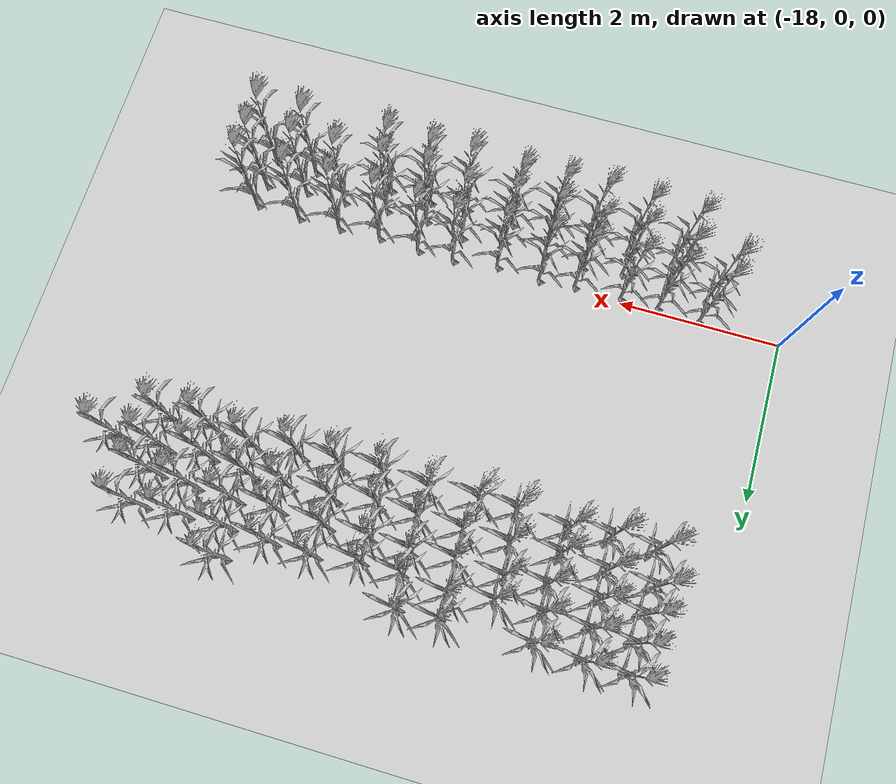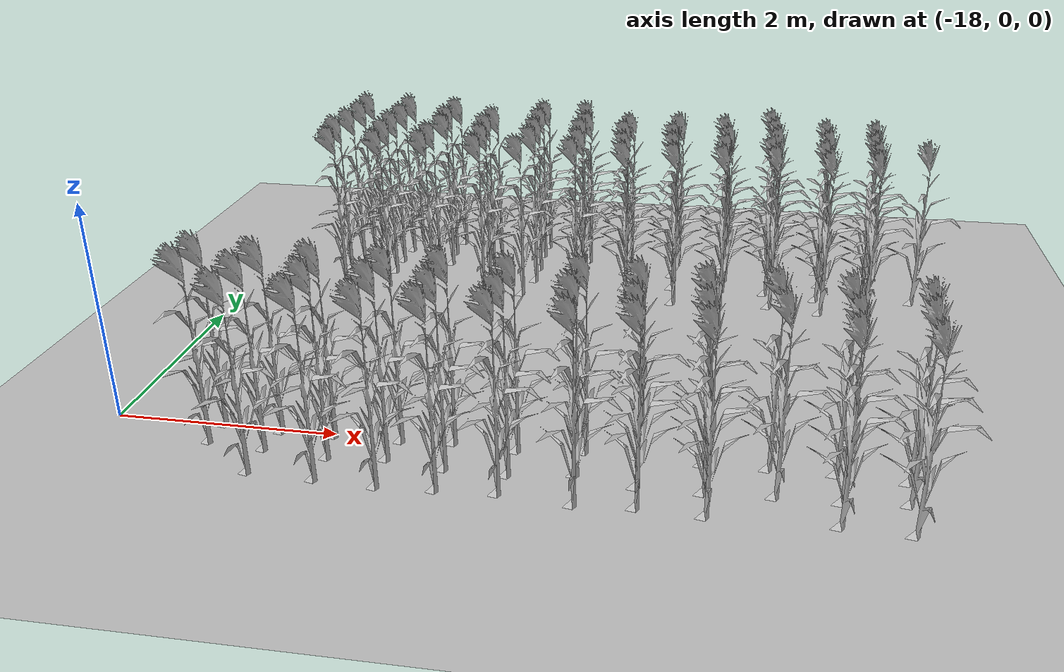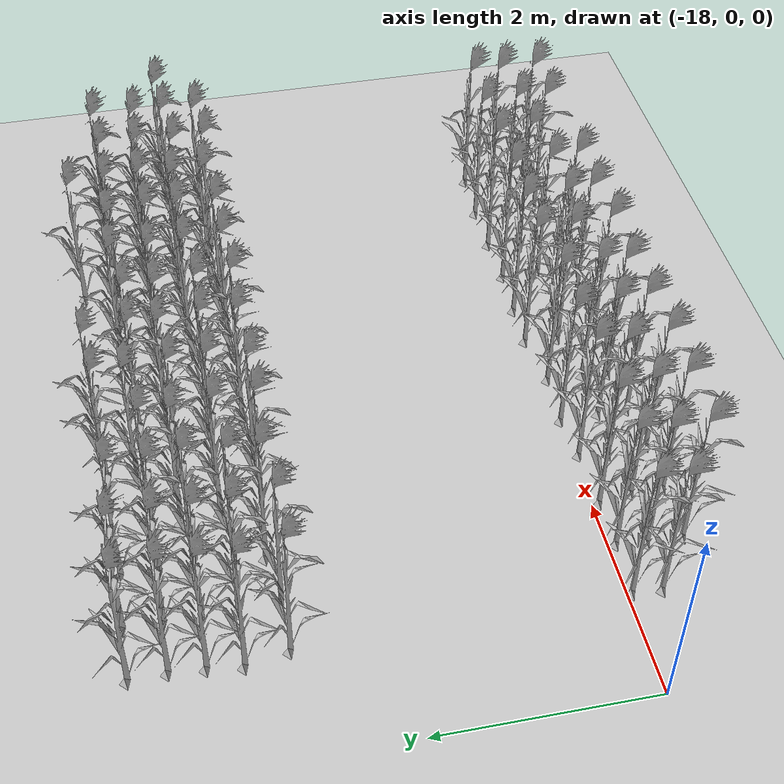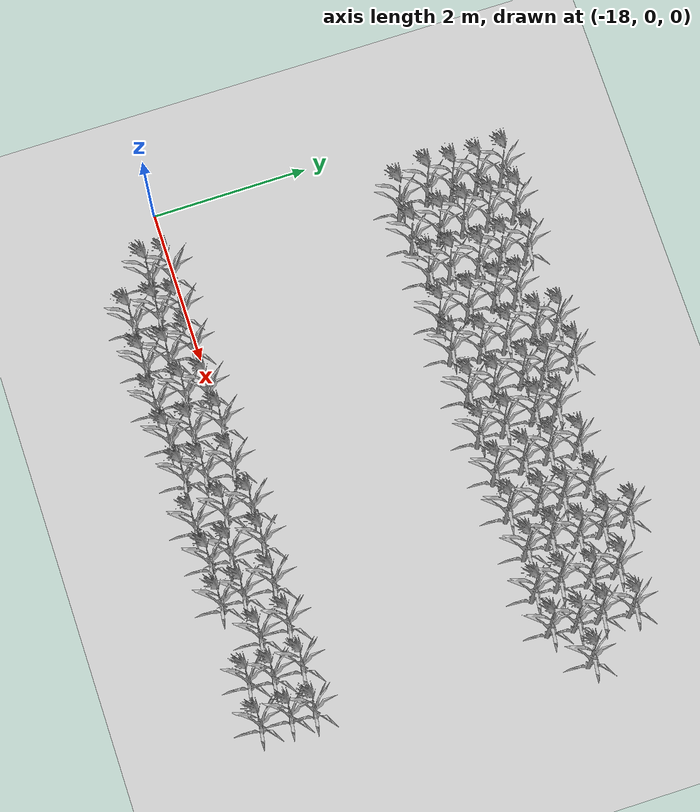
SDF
<sdf version="1.7">
 <world name="farmland_world">
  <model name="ground_plane">
   <static>1</static>
   <link name="link">
    <collision name="collision">
     <geometry><plane><normal>0 0 1</normal><size>40.0 40.0</size></plane></geometry>
     <surface><friction><ode><mu>100</mu><mu2>50</mu2></ode></friction></surface>
    </collision>
    <visual name="visual">
     <cast_shadows>0</cast_shadows>
     <geometry><plane><normal>0 0 1</normal><size>40.0 40.0</size></plane></geometry>
     <material>
      <script><uri>file://media/materials/scripts/gazebo.material</uri><name>Gazebo/Grey</name></script>
     </material>
    </visual>
   </link>
  </model>
  <model name="tree_3_2679">
   <static>1</static>
   <link name="link">
    <collision name="collision">
     <geometry><mesh><uri>model://Corn_low_poly/corn.obj</uri><scale>1 1 1</scale></mesh></geometry>
     <surface><friction><ode><mu>100</mu><mu2>50</mu2></ode></friction></surface>
    </collision>
    <visual name="visual">
     <geometry><mesh><uri>model://Corn_low_poly/corn.obj</uri><scale>1 1 1</scale></mesh></geometry>
    </visual>
   </link>
   <pose>-11.22473738852305 0.008085928798481102 0 0 0 0</pose>
  </model>
  <model name="tree_3_2680">
   <static>1</static>
   <link name="link">
    <collision name="collision">
     <geometry><mesh><uri>model://Corn_low_poly/corn.obj</uri><scale>1 1 1</scale></mesh></geometry>
     <surface><friction><ode><mu>100</mu><mu2>50</mu2></ode></friction></surface>
    </collision>
    <visual name="visual">
     <geometry><mesh><uri>model://Corn_low_poly/corn.obj</uri><scale>1 1 1</scale></mesh></geometry>
    </visual>
   </link>
   <pose>-11.790614640095132 0.034270175727297784 0 0 0 0</pose>
  </model>
  <model name="tree_3_2681">
   <static>1</static>
   <link name="link">
    <collision name="collision">
     <geometry><mesh><uri>model://Corn_low_poly/corn.obj</uri><scale>1 1 1</scale></mesh></geometry>
     <surface><friction><ode><mu>100</mu><mu2>50</mu2></ode></friction></surface>
    </collision>
    <visual name="visual">
     <geometry><mesh><uri>model://Corn_low_poly/corn.obj</uri><scale>1 1 1</scale></mesh></geometry>
    </visual>
   </link>
   <pose>-12.328868077486655 0.03215002560086377 0 0 0 0</pose>
  </model>
  <model name="tree_3_2682">
   <static>1</static>
   <link name="link">
    <collision name="collision">
     <geometry><mesh><uri>model://Corn_low_poly/corn.obj</uri><scale>1 1 1</scale></mesh></geometry>
     <surface><friction><ode><mu>100</mu><mu2>50</mu2></ode></friction></surface>
    </collision>
    <visual name="visual">
     <geometry><mesh><uri>model://Corn_low_poly/corn.obj</uri><scale>1 1 1</scale></mesh></geometry>
    </visual>
   </link>
   <pose>-12.85662036014044 0.01417417951512321 0 0 0 0</pose>
  </model>
  <model name="tree_3_2683">
   <static>1</static>
   <link name="link">
    <collision name="collision">
     <geometry><mesh><uri>model://Corn_low_poly/corn.obj</uri><scale>1 1 1</scale></mesh></geometry>
     <surface><friction><ode><mu>100</mu><mu2>50</mu2></ode></friction></surface>
    </collision>
    <visual name="visual">
     <geometry><mesh><uri>model://Corn_low_poly/corn.obj</uri><scale>1 1 1</scale></mesh></geometry>
    </visual>
   </link>
   <pose>-13.375347994106269 0.04001120567109955 0 0 0 0</pose>
  </model>
  <model name="tree_3_2684">
   <static>1</static>
   <link name="link">
    <collision name="collision">
     <geometry><mesh><uri>model://Corn_low_poly/corn.obj</uri><scale>1 1 1</scale></mesh></geometry>
     <surface><friction><ode><mu>100</mu><mu2>50</mu2></ode></friction></surface>
    </collision>
    <visual name="visual">
     <geometry><mesh><uri>model://Corn_low_poly/corn.obj</uri><scale>1 1 1</scale></mesh></geometry>
    </visual>
   </link>
   <pose>-13.832148294953392 0.04764776157289655 0 0 0 0</pose>
  </model>
  <model name="tree_3_2685">
   <static>1</static>
   <link name="link">
    <collision name="collision">
     <geometry><mesh><uri>model://Corn_low_poly/corn.obj</uri><scale>1 1 1</scale></mesh></geometry>
     <surface><friction><ode><mu>100</mu><mu2>50</mu2></ode></friction></surface>
    </collision>
    <visual name="visual">
     <geometry><mesh><uri>model://Corn_low_poly/corn.obj</uri><scale>1 1 1</scale></mesh></geometry>
    </visual>
   </link>
   <pose>-14.392944119927142 -0.02256867929219534 0 0 0 0</pose>
  </model>
  <model name="tree_3_2686">
   <static>1</static>
   <link name="link">
    <collision name="collision">
     <geometry><mesh><uri>model://Corn_low_poly/corn.obj</uri><scale>1 1 1</scale></mesh></geometry>
     <surface><friction><ode><mu>100</mu><mu2>50</mu2></ode></friction></surface>
    </collision>
    <visual name="visual">
     <geometry><mesh><uri>model://Corn_low_poly/corn.obj</uri><scale>1 1 1</scale></mesh></geometry>
    </visual>
   </link>
   <pose>-14.939331549344429 0.01062265309950079 0 0 0 0</pose>
  </model>
  <model name="tree_3_2687">
   <static>1</static>
   <link name="link">
    <collision name="collision">
     <geometry><mesh><uri>model://Corn_low_poly/corn.obj</uri><scale>1 1 1</scale></mesh></geometry>
     <surface><friction><ode><mu>100</mu><mu2>50</mu2></ode></friction></surface>
    </collision>
    <visual name="visual">
     <geometry><mesh><uri>model://Corn_low_poly/corn.obj</uri><scale>1 1 1</scale></mesh></geometry>
    </visual>
   </link>
   <pose>-15.388814630328898 -0.028948765263810294 0 0 0 0</pose>
  </model>
  <model name="tree_3_2688">
   <static>1</static>
   <link name="link">
    <collision name="collision">
     <geometry><mesh><uri>model://Corn_low_poly/corn.obj</uri><scale>1 1 1</scale></mesh></geometry>
     <surface><friction><ode><mu>100</mu><mu2>50</mu2></ode></friction></surface>
    </collision>
    <visual name="visual">
     <geometry><mesh><uri>model://Corn_low_poly/corn.obj</uri><scale>1 1 1</scale></mesh></geometry>
    </visual>
   </link>
   <pose>-15.974549811489679 -0.039902551110924445 0 0 0 0</pose>
  </model>
  <model name="tree_3_2689">
   <static>1</static>
   <link name="link">
    <collision name="collision">
     <geometry><mesh><uri>model://Corn_low_poly/corn.obj</uri><scale>1 1 1</scale></mesh></geometry>
     <surface><friction><ode><mu>100</mu><mu2>50</mu2></ode></friction></surface>
    </collision>
    <visual name="visual">
     <geometry><mesh><uri>model://Corn_low_poly/corn.obj</uri><scale>1 1 1</scale></mesh></geometry>
    </visual>
   </link>
   <pose>-16.444942536429863 -0.043494782947700664 0 0 0 0</pose>
  </model>
  <model name="tree_3_2690">
   <static>1</static>
   <link name="link">
    <collision name="collision">
     <geometry><mesh><uri>model://Corn_low_poly/corn.obj</uri><scale>1 1 1</scale></mesh></geometry>
     <surface><friction><ode><mu>100</mu><mu2>50</mu2></ode></friction></surface>
    </collision>
    <visual name="visual">
     <geometry><mesh><uri>model://Corn_low_poly/corn.obj</uri><scale>1 1 1</scale></mesh></geometry>
    </visual>
   </link>
   <pose>-16.973653866845712 -0.012975244805157982 0 0 0 0</pose>
  </model>
  <model name="tree_3_2703">
   <static>1</static>
   <link name="link">
    <collision name="collision">
     <geometry><mesh><uri>model://Corn_low_poly/corn.obj</uri><scale>1 1 1</scale></mesh></geometry>
     <surface><friction><ode><mu>100</mu><mu2>50</mu2></ode></friction></surface>
    </collision>
    <visual name="visual">
     <geometry><mesh><uri>model://Corn_low_poly/corn.obj</uri><scale>1 1 1</scale></mesh></geometry>
    </visual>
   </link>
   <pose>-11.250323345680146 -0.28620204811355787 0 0 0 0</pose>
  </model>
  <model name="tree_3_2704">
   <static>1</static>
   <link name="link">
    <collision name="collision">
     <geometry><mesh><uri>model://Corn_low_poly/corn.obj</uri><scale>1 1 1</scale></mesh></geometry>
     <surface><friction><ode><mu>100</mu><mu2>50</mu2></ode></friction></surface>
    </collision>
    <visual name="visual">
     <geometry><mesh><uri>model://Corn_low_poly/corn.obj</uri><scale>1 1 1</scale></mesh></geometry>
    </visual>
   </link>
   <pose>-11.77226226288889 -0.3355664571912778 0 0 0 0</pose>
  </model>
  <model name="tree_3_2705">
   <static>1</static>
   <link name="link">
    <collision name="collision">
     <geometry><mesh><uri>model://Corn_low_poly/corn.obj</uri><scale>1 1 1</scale></mesh></geometry>
     <surface><friction><ode><mu>100</mu><mu2>50</mu2></ode></friction></surface>
    </collision>
    <visual name="visual">
     <geometry><mesh><uri>model://Corn_low_poly/corn.obj</uri><scale>1 1 1</scale></mesh></geometry>
    </visual>
   </link>
   <pose>-12.279342798237767 -0.3390000657468994 0 0 0 0</pose>
  </model>
  <model name="tree_3_2706">
   <static>1</static>
   <link name="link">
    <collision name="collision">
     <geometry><mesh><uri>model://Corn_low_poly/corn.obj</uri><scale>1 1 1</scale></mesh></geometry>
     <surface><friction><ode><mu>100</mu><mu2>50</mu2></ode></friction></surface>
    </collision>
    <visual name="visual">
     <geometry><mesh><uri>model://Corn_low_poly/corn.obj</uri><scale>1 1 1</scale></mesh></geometry>
    </visual>
   </link>
   <pose>-12.835913611732376 -0.37526182968070565 0 0 0 0</pose>
  </model>
  <model name="tree_3_2707">
   <static>1</static>
   <link name="link">
    <collision name="collision">
     <geometry><mesh><uri>model://Corn_low_poly/corn.obj</uri><scale>1 1 1</scale></mesh></geometry>
     <surface><friction><ode><mu>100</mu><mu2>50</mu2></ode></friction></surface>
    </collision>
    <visual name="visual">
     <geometry><mesh><uri>model://Corn_low_poly/corn.obj</uri><scale>1 1 1</scale></mesh></geometry>
    </visual>
   </link>
   <pose>-13.36314282343267 -0.376553292162677 0 0 0 0</pose>
  </model>
  <model name="tree_3_2708">
   <static>1</static>
   <link name="link">
    <collision name="collision">
     <geometry><mesh><uri>model://Corn_low_poly/corn.obj</uri><scale>1 1 1</scale></mesh></geometry>
     <surface><friction><ode><mu>100</mu><mu2>50</mu2></ode></friction></surface>
    </collision>
    <visual name="visual">
     <geometry><mesh><uri>model://Corn_low_poly/corn.obj</uri><scale>1 1 1</scale></mesh></geometry>
    </visual>
   </link>
   <pose>-13.860748521346299 -0.28534000060419473 0 0 0 0</pose>
  </model>
  <model name="tree_3_2709">
   <static>1</static>
   <link name="link">
    <collision name="collision">
     <geometry><mesh><uri>model://Corn_low_poly/corn.obj</uri><scale>1 1 1</scale></mesh></geometry>
     <surface><friction><ode><mu>100</mu><mu2>50</mu2></ode></friction></surface>
    </collision>
    <visual name="visual">
     <geometry><mesh><uri>model://Corn_low_poly/corn.obj</uri><scale>1 1 1</scale></mesh></geometry>
    </visual>
   </link>
   <pose>-14.401749868028853 -0.37405726359070113 0 0 0 0</pose>
  </model>
  <model name="tree_3_2710">
   <static>1</static>
   <link name="link">
    <collision name="collision">
     <geometry><mesh><uri>model://Corn_low_poly/corn.obj</uri><scale>1 1 1</scale></mesh></geometry>
     <surface><friction><ode><mu>100</mu><mu2>50</mu2></ode></friction></surface>
    </collision>
    <visual name="visual">
     <geometry><mesh><uri>model://Corn_low_poly/corn.obj</uri><scale>1 1 1</scale></mesh></geometry>
    </visual>
   </link>
   <pose>-14.92271210157506 -0.3675421242354291 0 0 0 0</pose>
  </model>
  <model name="tree_3_2711">
   <static>1</static>
   <link name="link">
    <collision name="collision">
     <geometry><mesh><uri>model://Corn_low_poly/corn.obj</uri><scale>1 1 1</scale></mesh></geometry>
     <surface><friction><ode><mu>100</mu><mu2>50</mu2></ode></friction></surface>
    </collision>
    <visual name="visual">
     <geometry><mesh><uri>model://Corn_low_poly/corn.obj</uri><scale>1 1 1</scale></mesh></geometry>
    </visual>
   </link>
   <pose>-15.427291923347283 -0.3053054819481479 0 0 0 0</pose>
  </model>
  <model name="tree_3_2712">
   <static>1</static>
   <link name="link">
    <collision name="collision">
     <geometry><mesh><uri>model://Corn_low_poly/corn.obj</uri><scale>1 1 1</scale></mesh></geometry>
     <surface><friction><ode><mu>100</mu><mu2>50</mu2></ode></friction></surface>
    </collision>
    <visual name="visual">
     <geometry><mesh><uri>model://Corn_low_poly/corn.obj</uri><scale>1 1 1</scale></mesh></geometry>
    </visual>
   </link>
   <pose>-15.92019794005494 -0.35769318478338685 0 0 0 0</pose>
  </model>
  <model name="tree_3_2713">
   <static>1</static>
   <link name="link">
    <collision name="collision">
     <geometry><mesh><uri>model://Corn_low_poly/corn.obj</uri><scale>1 1 1</scale></mesh></geometry>
     <surface><friction><ode><mu>100</mu><mu2>50</mu2></ode></friction></surface>
    </collision>
    <visual name="visual">
     <geometry><mesh><uri>model://Corn_low_poly/corn.obj</uri><scale>1 1 1</scale></mesh></geometry>
    </visual>
   </link>
   <pose>-16.486934889108923 -0.3176988165076204 0 0 0 0</pose>
  </model>
  <model name="tree_3_2714">
   <static>1</static>
   <link name="link">
    <collision name="collision">
     <geometry><mesh><uri>model://Corn_low_poly/corn.obj</uri><scale>1 1 1</scale></mesh></geometry>
     <surface><friction><ode><mu>100</mu><mu2>50</mu2></ode></friction></surface>
    </collision>
    <visual name="visual">
     <geometry><mesh><uri>model://Corn_low_poly/corn.obj</uri><scale>1 1 1</scale></mesh></geometry>
    </visual>
   </link>
   <pose>-16.993867113102294 -0.2804954456670586 0 0 0 0</pose>
  </model>
  <model name="tree_3_2727">
   <static>1</static>
   <link name="link">
    <collision name="collision">
     <geometry><mesh><uri>model://Corn_low_poly/corn.obj</uri><scale>1 1 1</scale></mesh></geometry>
     <surface><friction><ode><mu>100</mu><mu2>50</mu2></ode></friction></surface>
    </collision>
    <visual name="visual">
     <geometry><mesh><uri>model://Corn_low_poly/corn.obj</uri><scale>1 1 1</scale></mesh></geometry>
    </visual>
   </link>
   <pose>-11.256796019077827 -0.66108221324594 0 0 0 0</pose>
  </model>
  <model name="tree_3_2728">
   <static>1</static>
   <link name="link">
    <collision name="collision">
     <geometry><mesh><uri>model://Corn_low_poly/corn.obj</uri><scale>1 1 1</scale></mesh></geometry>
     <surface><friction><ode><mu>100</mu><mu2>50</mu2></ode></friction></surface>
    </collision>
    <visual name="visual">
     <geometry><mesh><uri>model://Corn_low_poly/corn.obj</uri><scale>1 1 1</scale></mesh></geometry>
    </visual>
   </link>
   <pose>-11.800026058231456 -0.6383826170753676 0 0 0 0</pose>
  </model>
  <model name="tree_3_2730">
   <static>1</static>
   <link name="link">
    <collision name="collision">
     <geometry><mesh><uri>model://Corn_low_poly/corn.obj</uri><scale>1 1 1</scale></mesh></geometry>
     <surface><friction><ode><mu>100</mu><mu2>50</mu2></ode></friction></surface>
    </collision>
    <visual name="visual">
     <geometry><mesh><uri>model://Corn_low_poly/corn.obj</uri><scale>1 1 1</scale></mesh></geometry>
    </visual>
   </link>
   <pose>-12.807505019816082 -0.6677893618914951 0 0 0 0</pose>
  </model>
  <model name="tree_3_2731">
   <static>1</static>
   <link name="link">
    <collision name="collision">
     <geometry><mesh><uri>model://Corn_low_poly/corn.obj</uri><scale>1 1 1</scale></mesh></geometry>
     <surface><friction><ode><mu>100</mu><mu2>50</mu2></ode></friction></surface>
    </collision>
    <visual name="visual">
     <geometry><mesh><uri>model://Corn_low_poly/corn.obj</uri><scale>1 1 1</scale></mesh></geometry>
    </visual>
   </link>
   <pose>-13.339699445782157 -0.6419986115670973 0 0 0 0</pose>
  </model>
  <model name="tree_3_2732">
   <static>1</static>
   <link name="link">
    <collision name="collision">
     <geometry><mesh><uri>model://Corn_low_poly/corn.obj</uri><scale>1 1 1</scale></mesh></geometry>
     <surface><friction><ode><mu>100</mu><mu2>50</mu2></ode></friction></surface>
    </collision>
    <visual name="visual">
     <geometry><mesh><uri>model://Corn_low_poly/corn.obj</uri><scale>1 1 1</scale></mesh></geometry>
    </visual>
   </link>
   <pose>-13.82178581520969 -0.6814204529785605 0 0 0 0</pose>
  </model>
  <model name="tree_3_2733">
   <static>1</static>
   <link name="link">
    <collision name="collision">
     <geometry><mesh><uri>model://Corn_low_poly/corn.obj</uri><scale>1 1 1</scale></mesh></geometry>
     <surface><friction><ode><mu>100</mu><mu2>50</mu2></ode></friction></surface>
    </collision>
    <visual name="visual">
     <geometry><mesh><uri>model://Corn_low_poly/corn.obj</uri><scale>1 1 1</scale></mesh></geometry>
    </visual>
   </link>
   <pose>-14.426762362059199 -0.6292858634957148 0 0 0 0</pose>
  </model>
  <model name="tree_3_2734">
   <static>1</static>
   <link name="link">
    <collision name="collision">
     <geometry><mesh><uri>model://Corn_low_poly/corn.obj</uri><scale>1 1 1</scale></mesh></geometry>
     <surface><friction><ode><mu>100</mu><mu2>50</mu2></ode></friction></surface>
    </collision>
    <visual name="visual">
     <geometry><mesh><uri>model://Corn_low_poly/corn.obj</uri><scale>1 1 1</scale></mesh></geometry>
    </visual>
   </link>
   <pose>-14.923128331554034 -0.6573811698892476 0 0 0 0</pose>
  </model>
  <model name="tree_3_2735">
   <static>1</static>
   <link name="link">
    <collision name="collision">
     <geometry><mesh><uri>model://Corn_low_poly/corn.obj</uri><scale>1 1 1</scale></mesh></geometry>
     <surface><friction><ode><mu>100</mu><mu2>50</mu2></ode></friction></surface>
    </collision>
    <visual name="visual">
     <geometry><mesh><uri>model://Corn_low_poly/corn.obj</uri><scale>1 1 1</scale></mesh></geometry>
    </visual>
   </link>
   <pose>-15.397732164002495 -0.6862872771697315 0 0 0 0</pose>
  </model>
  <model name="tree_3_2736">
   <static>1</static>
   <link name="link">
    <collision name="collision">
     <geometry><mesh><uri>model://Corn_low_poly/corn.obj</uri><scale>1 1 1</scale></mesh></geometry>
     <surface><friction><ode><mu>100</mu><mu2>50</mu2></ode></friction></surface>
    </collision>
    <visual name="visual">
     <geometry><mesh><uri>model://Corn_low_poly/corn.obj</uri><scale>1 1 1</scale></mesh></geometry>
    </visual>
   </link>
   <pose>-15.91649986174528 -0.6671554262082522 0 0 0 0</pose>
  </model>
  <model name="tree_3_2737">
   <static>1</static>
   <link name="link">
    <collision name="collision">
     <geometry><mesh><uri>model://Corn_low_poly/corn.obj</uri><scale>1 1 1</scale></mesh></geometry>
     <surface><friction><ode><mu>100</mu><mu2>50</mu2></ode></friction></surface>
    </collision>
    <visual name="visual">
     <geometry><mesh><uri>model://Corn_low_poly/corn.obj</uri><scale>1 1 1</scale></mesh></geometry>
    </visual>
   </link>
   <pose>-16.48493195041884 -0.65109091911635 0 0 0 0</pose>
  </model>
  <model name="tree_3_2751">
   <static>1</static>
   <link name="link">
    <collision name="collision">
     <geometry><mesh><uri>model://Corn_low_poly/corn.obj</uri><scale>1 1 1</scale></mesh></geometry>
     <surface><friction><ode><mu>100</mu><mu2>50</mu2></ode></friction></surface>
    </collision>
    <visual name="visual">
     <geometry><mesh><uri>model://Corn_low_poly/corn.obj</uri><scale>1 1 1</scale></mesh></geometry>
    </visual>
   </link>
   <pose>-11.300641458042886 3.008735863856309 0 0 0 0</pose>
  </model>
  <model name="tree_3_2752">
   <static>1</static>
   <link name="link">
    <collision name="collision">
     <geometry><mesh><uri>model://Corn_low_poly/corn.obj</uri><scale>1 1 1</scale></mesh></geometry>
     <surface><friction><ode><mu>100</mu><mu2>50</mu2></ode></friction></surface>
    </collision>
    <visual name="visual">
     <geometry><mesh><uri>model://Corn_low_poly/corn.obj</uri><scale>1 1 1</scale></mesh></geometry>
    </visual>
   </link>
   <pose>-11.768117094159216 2.9640276574805138 0 0 0 0</pose>
  </model>
  <model name="tree_3_2753">
   <static>1</static>
   <link name="link">
    <collision name="collision">
     <geometry><mesh><uri>model://Corn_low_poly/corn.obj</uri><scale>1 1 1</scale></mesh></geometry>
     <surface><friction><ode><mu>100</mu><mu2>50</mu2></ode></friction></surface>
    </collision>
    <visual name="visual">
     <geometry><mesh><uri>model://Corn_low_poly/corn.obj</uri><scale>1 1 1</scale></mesh></geometry>
    </visual>
   </link>
   <pose>-12.295839716322202 3.0426064403027757 0 0 0 0</pose>
  </model>
  <model name="tree_3_2754">
   <static>1</static>
   <link name="link">
    <collision name="collision">
     <geometry><mesh><uri>model://Corn_low_poly/corn.obj</uri><scale>1 1 1</scale></mesh></geometry>
     <surface><friction><ode><mu>100</mu><mu2>50</mu2></ode></friction></surface>
    </collision>
    <visual name="visual">
     <geometry><mesh><uri>model://Corn_low_poly/corn.obj</uri><scale>1 1 1</scale></mesh></geometry>
    </visual>
   </link>
   <pose>-12.819798401594321 2.982651952470517 0 0 0 0</pose>
  </model>
  <model name="tree_3_2755">
   <static>1</static>
   <link name="link">
    <collision name="collision">
     <geometry><mesh><uri>model://Corn_low_poly/corn.obj</uri><scale>1 1 1</scale></mesh></geometry>
     <surface><friction><ode><mu>100</mu><mu2>50</mu2></ode></friction></surface>
    </collision>
    <visual name="visual">
     <geometry><mesh><uri>model://Corn_low_poly/corn.obj</uri><scale>1 1 1</scale></mesh></geometry>
    </visual>
   </link>
   <pose>-13.317165097841185 2.9818411085220826 0 0 0 0</pose>
  </model>
  <model name="tree_3_2756">
   <static>1</static>
   <link name="link">
    <collision name="collision">
     <geometry><mesh><uri>model://Corn_low_poly/corn.obj</uri><scale>1 1 1</scale></mesh></geometry>
     <surface><friction><ode><mu>100</mu><mu2>50</mu2></ode></friction></surface>
    </collision>
    <visual name="visual">
     <geometry><mesh><uri>model://Corn_low_poly/corn.obj</uri><scale>1 1 1</scale></mesh></geometry>
    </visual>
   </link>
   <pose>-13.833158873442583 2.952771018803871 0 0 0 0</pose>
  </model>
  <model name="tree_3_2757">
   <static>1</static>
   <link name="link">
    <collision name="collision">
     <geometry><mesh><uri>model://Corn_low_poly/corn.obj</uri><scale>1 1 1</scale></mesh></geometry>
     <surface><friction><ode><mu>100</mu><mu2>50</mu2></ode></friction></surface>
    </collision>
    <visual name="visual">
     <geometry><mesh><uri>model://Corn_low_poly/corn.obj</uri><scale>1 1 1</scale></mesh></geometry>
    </visual>
   </link>
   <pose>-14.379206859511076 2.994718814689506 0 0 0 0</pose>
  </model>
  <model name="tree_3_2758">
   <static>1</static>
   <link name="link">
    <collision name="collision">
     <geometry><mesh><uri>model://Corn_low_poly/corn.obj</uri><scale>1 1 1</scale></mesh></geometry>
     <surface><friction><ode><mu>100</mu><mu2>50</mu2></ode></friction></surface>
    </collision>
    <visual name="visual">
     <geometry><mesh><uri>model://Corn_low_poly/corn.obj</uri><scale>1 1 1</scale></mesh></geometry>
    </visual>
   </link>
   <pose>-14.952705238757249 2.965420720686065 0 0 0 0</pose>
  </model>
  <model name="tree_3_2759">
   <static>1</static>
   <link name="link">
    <collision name="collision">
     <geometry><mesh><uri>model://Corn_low_poly/corn.obj</uri><scale>1 1 1</scale></mesh></geometry>
     <surface><friction><ode><mu>100</mu><mu2>50</mu2></ode></friction></surface>
    </collision>
    <visual name="visual">
     <geometry><mesh><uri>model://Corn_low_poly/corn.obj</uri><scale>1 1 1</scale></mesh></geometry>
    </visual>
   </link>
   <pose>-15.391183944700014 2.967374434024921 0 0 0 0</pose>
  </model>
  <model name="tree_3_2760">
   <static>1</static>
   <link name="link">
    <collision name="collision">
     <geometry><mesh><uri>model://Corn_low_poly/corn.obj</uri><scale>1 1 1</scale></mesh></geometry>
     <surface><friction><ode><mu>100</mu><mu2>50</mu2></ode></friction></surface>
    </collision>
    <visual name="visual">
     <geometry><mesh><uri>model://Corn_low_poly/corn.obj</uri><scale>1 1 1</scale></mesh></geometry>
    </visual>
   </link>
   <pose>-15.98591104979813 3.0212186845142157 0 0 0 0</pose>
  </model>
  <model name="tree_3_2761">
   <static>1</static>
   <link name="link">
    <collision name="collision">
     <geometry><mesh><uri>model://Corn_low_poly/corn.obj</uri><scale>1 1 1</scale></mesh></geometry>
     <surface><friction><ode><mu>100</mu><mu2>50</mu2></ode></friction></surface>
    </collision>
    <visual name="visual">
     <geometry><mesh><uri>model://Corn_low_poly/corn.obj</uri><scale>1 1 1</scale></mesh></geometry>
    </visual>
   </link>
   <pose>-16.461379333850914 2.9610605508539365 0 0 0 0</pose>
  </model>
  <model name="tree_3_2762">
   <static>1</static>
   <link name="link">
    <collision name="collision">
     <geometry><mesh><uri>model://Corn_low_poly/corn.obj</uri><scale>1 1 1</scale></mesh></geometry>
     <surface><friction><ode><mu>100</mu><mu2>50</mu2></ode></friction></surface>
    </collision>
    <visual name="visual">
     <geometry><mesh><uri>model://Corn_low_poly/corn.obj</uri><scale>1 1 1</scale></mesh></geometry>
    </visual>
   </link>
   <pose>-16.96902788994433 2.965486839157603 0 0 0 0</pose>
  </model>
  <model name="tree_3_2774">
   <static>1</static>
   <link name="link">
    <collision name="collision">
     <geometry><mesh><uri>model://Corn_low_poly/corn.obj</uri><scale>1 1 1</scale></mesh></geometry>
     <surface><friction><ode><mu>100</mu><mu2>50</mu2></ode></friction></surface>
    </collision>
    <visual name="visual">
     <geometry><mesh><uri>model://Corn_low_poly/corn.obj</uri><scale>1 1 1</scale></mesh></geometry>
    </visual>
   </link>
   <pose>-10.786835621837096 3.363760071242066 0 0 0 0</pose>
  </model>
  <model name="tree_3_2775">
   <static>1</static>
   <link name="link">
    <collision name="collision">
     <geometry><mesh><uri>model://Corn_low_poly/corn.obj</uri><scale>1 1 1</scale></mesh></geometry>
     <surface><friction><ode><mu>100</mu><mu2>50</mu2></ode></friction></surface>
    </collision>
    <visual name="visual">
     <geometry><mesh><uri>model://Corn_low_poly/corn.obj</uri><scale>1 1 1</scale></mesh></geometry>
    </visual>
   </link>
   <pose>-11.26254878975401 3.3335528595916193 0 0 0 0</pose>
  </model>
  <model name="tree_3_2776">
   <static>1</static>
   <link name="link">
    <collision name="collision">
     <geometry><mesh><uri>model://Corn_low_poly/corn.obj</uri><scale>1 1 1</scale></mesh></geometry>
     <surface><friction><ode><mu>100</mu><mu2>50</mu2></ode></friction></surface>
    </collision>
    <visual name="visual">
     <geometry><mesh><uri>model://Corn_low_poly/corn.obj</uri><scale>1 1 1</scale></mesh></geometry>
    </visual>
   </link>
   <pose>-11.798398448692923 3.287051984567644 0 0 0 0</pose>
  </model>
  <model name="tree_3_2777">
   <static>1</static>
   <link name="link">
    <collision name="collision">
     <geometry><mesh><uri>model://Corn_low_poly/corn.obj</uri><scale>1 1 1</scale></mesh></geometry>
     <surface><friction><ode><mu>100</mu><mu2>50</mu2></ode></friction></surface>
    </collision>
    <visual name="visual">
     <geometry><mesh><uri>model://Corn_low_poly/corn.obj</uri><scale>1 1 1</scale></mesh></geometry>
    </visual>
   </link>
   <pose>-12.336127702897093 3.360999537732869 0 0 0 0</pose>
  </model>
  <model name="tree_3_2778">
   <static>1</static>
   <link name="link">
    <collision name="collision">
     <geometry><mesh><uri>model://Corn_low_poly/corn.obj</uri><scale>1 1 1</scale></mesh></geometry>
     <surface><friction><ode><mu>100</mu><mu2>50</mu2></ode></friction></surface>
    </collision>
    <visual name="visual">
     <geometry><mesh><uri>model://Corn_low_poly/corn.obj</uri><scale>1 1 1</scale></mesh></geometry>
    </visual>
   </link>
   <pose>-12.802408205396231 3.3630672524405605 0 0 0 0</pose>
  </model>
  <model name="tree_3_2779">
   <static>1</static>
   <link name="link">
    <collision name="collision">
     <geometry><mesh><uri>model://Corn_low_poly/corn.obj</uri><scale>1 1 1</scale></mesh></geometry>
     <surface><friction><ode><mu>100</mu><mu2>50</mu2></ode></friction></surface>
    </collision>
    <visual name="visual">
     <geometry><mesh><uri>model://Corn_low_poly/corn.obj</uri><scale>1 1 1</scale></mesh></geometry>
    </visual>
   </link>
   <pose>-13.349824231223556 3.359937310771 0 0 0 0</pose>
  </model>
  <model name="tree_3_2780">
   <static>1</static>
   <link name="link">
    <collision name="collision">
     <geometry><mesh><uri>model://Corn_low_poly/corn.obj</uri><scale>1 1 1</scale></mesh></geometry>
     <surface><friction><ode><mu>100</mu><mu2>50</mu2></ode></friction></surface>
    </collision>
    <visual name="visual">
     <geometry><mesh><uri>model://Corn_low_poly/corn.obj</uri><scale>1 1 1</scale></mesh></geometry>
    </visual>
   </link>
   <pose>-13.862972263061426 3.292203411750993 0 0 0 0</pose>
  </model>
  <model name="tree_3_2781">
   <static>1</static>
   <link name="link">
    <collision name="collision">
     <geometry><mesh><uri>model://Corn_low_poly/corn.obj</uri><scale>1 1 1</scale></mesh></geometry>
     <surface><friction><ode><mu>100</mu><mu2>50</mu2></ode></friction></surface>
    </collision>
    <visual name="visual">
     <geometry><mesh><uri>model://Corn_low_poly/corn.obj</uri><scale>1 1 1</scale></mesh></geometry>
    </visual>
   </link>
   <pose>-14.345634611201822 3.3170964284045685 0 0 0 0</pose>
  </model>
  <model name="tree_3_2782">
   <static>1</static>
   <link name="link">
    <collision name="collision">
     <geometry><mesh><uri>model://Corn_low_poly/corn.obj</uri><scale>1 1 1</scale></mesh></geometry>
     <surface><friction><ode><mu>100</mu><mu2>50</mu2></ode></friction></surface>
    </collision>
    <visual name="visual">
     <geometry><mesh><uri>model://Corn_low_poly/corn.obj</uri><scale>1 1 1</scale></mesh></geometry>
    </visual>
   </link>
   <pose>-14.873087537113024 3.3281730979674213 0 0 0 0</pose>
  </model>
  <model name="tree_3_2783">
   <static>1</static>
   <link name="link">
    <collision name="collision">
     <geometry><mesh><uri>model://Corn_low_poly/corn.obj</uri><scale>1 1 1</scale></mesh></geometry>
     <surface><friction><ode><mu>100</mu><mu2>50</mu2></ode></friction></surface>
    </collision>
    <visual name="visual">
     <geometry><mesh><uri>model://Corn_low_poly/corn.obj</uri><scale>1 1 1</scale></mesh></geometry>
    </visual>
   </link>
   <pose>-15.405514881691184 3.3426299202376026 0 0 0 0</pose>
  </model>
  <model name="tree_3_2784">
   <static>1</static>
   <link name="link">
    <collision name="collision">
     <geometry><mesh><uri>model://Corn_low_poly/corn.obj</uri><scale>1 1 1</scale></mesh></geometry>
     <surface><friction><ode><mu>100</mu><mu2>50</mu2></ode></friction></surface>
    </collision>
    <visual name="visual">
     <geometry><mesh><uri>model://Corn_low_poly/corn.obj</uri><scale>1 1 1</scale></mesh></geometry>
    </visual>
   </link>
   <pose>-15.97424553675774 3.298489437945408 0 0 0 0</pose>
  </model>
  <model name="tree_3_2785">
   <static>1</static>
   <link name="link">
    <collision name="collision">
     <geometry><mesh><uri>model://Corn_low_poly/corn.obj</uri><scale>1 1 1</scale></mesh></geometry>
     <surface><friction><ode><mu>100</mu><mu2>50</mu2></ode></friction></surface>
    </collision>
    <visual name="visual">
     <geometry><mesh><uri>model://Corn_low_poly/corn.obj</uri><scale>1 1 1</scale></mesh></geometry>
    </visual>
   </link>
   <pose>-16.4950050514941 3.334889953360224 0 0 0 0</pose>
  </model>
  <model name="tree_3_2786">
   <static>1</static>
   <link name="link">
    <collision name="collision">
     <geometry><mesh><uri>model://Corn_low_poly/corn.obj</uri><scale>1 1 1</scale></mesh></geometry>
     <surface><friction><ode><mu>100</mu><mu2>50</mu2></ode></friction></surface>
    </collision>
    <visual name="visual">
     <geometry><mesh><uri>model://Corn_low_poly/corn.obj</uri><scale>1 1 1</scale></mesh></geometry>
    </visual>
   </link>
   <pose>-17.04301940775693 3.356050288990809 0 0 0 0</pose>
  </model>
  <model name="tree_3_2799">
   <static>1</static>
   <link name="link">
    <collision name="collision">
     <geometry><mesh><uri>model://Corn_low_poly/corn.obj</uri><scale>1 1 1</scale></mesh></geometry>
     <surface><friction><ode><mu>100</mu><mu2>50</mu2></ode></friction></surface>
    </collision>
    <visual name="visual">
     <geometry><mesh><uri>model://Corn_low_poly/corn.obj</uri><scale>1 1 1</scale></mesh></geometry>
    </visual>
   </link>
   <pose>-11.274152257221433 3.640528286970051 0 0 0 0</pose>
  </model>
  <model name="tree_3_2800">
   <static>1</static>
   <link name="link">
    <collision name="collision">
     <geometry><mesh><uri>model://Corn_low_poly/corn.obj</uri><scale>1 1 1</scale></mesh></geometry>
     <surface><friction><ode><mu>100</mu><mu2>50</mu2></ode></friction></surface>
    </collision>
    <visual name="visual">
     <geometry><mesh><uri>model://Corn_low_poly/corn.obj</uri><scale>1 1 1</scale></mesh></geometry>
    </visual>
   </link>
   <pose>-11.73483540711871 3.665323871130172 0 0 0 0</pose>
  </model>
  <model name="tree_3_2801">
   <static>1</static>
   <link name="link">
    <collision name="collision">
     <geometry><mesh><uri>model://Corn_low_poly/corn.obj</uri><scale>1 1 1</scale></mesh></geometry>
     <surface><friction><ode><mu>100</mu><mu2>50</mu2></ode></friction></surface>
    </collision>
    <visual name="visual">
     <geometry><mesh><uri>model://Corn_low_poly/corn.obj</uri><scale>1 1 1</scale></mesh></geometry>
    </visual>
   </link>
   <pose>-12.264478378700336 3.6872879194809918 0 0 0 0</pose>
  </model>
  <model name="tree_3_2802">
   <static>1</static>
   <link name="link">
    <collision name="collision">
     <geometry><mesh><uri>model://Corn_low_poly/corn.obj</uri><scale>1 1 1</scale></mesh></geometry>
     <surface><friction><ode><mu>100</mu><mu2>50</mu2></ode></friction></surface>
    </collision>
    <visual name="visual">
     <geometry><mesh><uri>model://Corn_low_poly/corn.obj</uri><scale>1 1 1</scale></mesh></geometry>
    </visual>
   </link>
   <pose>-12.780242345979026 3.6625466131557642 0 0 0 0</pose>
  </model>
  <model name="tree_3_2803">
   <static>1</static>
   <link name="link">
    <collision name="collision">
     <geometry><mesh><uri>model://Corn_low_poly/corn.obj</uri><scale>1 1 1</scale></mesh></geometry>
     <surface><friction><ode><mu>100</mu><mu2>50</mu2></ode></friction></surface>
    </collision>
    <visual name="visual">
     <geometry><mesh><uri>model://Corn_low_poly/corn.obj</uri><scale>1 1 1</scale></mesh></geometry>
    </visual>
   </link>
   <pose>-13.371087624545806 3.6890634226298866 0 0 0 0</pose>
  </model>
  <model name="tree_3_2804">
   <static>1</static>
   <link name="link">
    <collision name="collision">
     <geometry><mesh><uri>model://Corn_low_poly/corn.obj</uri><scale>1 1 1</scale></mesh></geometry>
     <surface><friction><ode><mu>100</mu><mu2>50</mu2></ode></friction></surface>
    </collision>
    <visual name="visual">
     <geometry><mesh><uri>model://Corn_low_poly/corn.obj</uri><scale>1 1 1</scale></mesh></geometry>
    </visual>
   </link>
   <pose>-13.899633854602962 3.68538766060053 0 0 0 0</pose>
  </model>
  <model name="tree_3_2805">
   <static>1</static>
   <link name="link">
    <collision name="collision">
     <geometry><mesh><uri>model://Corn_low_poly/corn.obj</uri><scale>1 1 1</scale></mesh></geometry>
     <surface><friction><ode><mu>100</mu><mu2>50</mu2></ode></friction></surface>
    </collision>
    <visual name="visual">
     <geometry><mesh><uri>model://Corn_low_poly/corn.obj</uri><scale>1 1 1</scale></mesh></geometry>
    </visual>
   </link>
   <pose>-14.385869706465746 3.7033847410395024 0 0 0 0</pose>
  </model>
  <model name="tree_3_2806">
   <static>1</static>
   <link name="link">
    <collision name="collision">
     <geometry><mesh><uri>model://Corn_low_poly/corn.obj</uri><scale>1 1 1</scale></mesh></geometry>
     <surface><friction><ode><mu>100</mu><mu2>50</mu2></ode></friction></surface>
    </collision>
    <visual name="visual">
     <geometry><mesh><uri>model://Corn_low_poly/corn.obj</uri><scale>1 1 1</scale></mesh></geometry>
    </visual>
   </link>
   <pose>-14.879779607872328 3.655334561537158 0 0 0 0</pose>
  </model>
  <model name="tree_3_2807">
   <static>1</static>
   <link name="link">
    <collision name="collision">
     <geometry><mesh><uri>model://Corn_low_poly/corn.obj</uri><scale>1 1 1</scale></mesh></geometry>
     <surface><friction><ode><mu>100</mu><mu2>50</mu2></ode></friction></surface>
    </collision>
    <visual name="visual">
     <geometry><mesh><uri>model://Corn_low_poly/corn.obj</uri><scale>1 1 1</scale></mesh></geometry>
    </visual>
   </link>
   <pose>-15.446172078809056 3.701682796492839 0 0 0 0</pose>
  </model>
  <model name="tree_3_2808">
   <static>1</static>
   <link name="link">
    <collision name="collision">
     <geometry><mesh><uri>model://Corn_low_poly/corn.obj</uri><scale>1 1 1</scale></mesh></geometry>
     <surface><friction><ode><mu>100</mu><mu2>50</mu2></ode></friction></surface>
    </collision>
    <visual name="visual">
     <geometry><mesh><uri>model://Corn_low_poly/corn.obj</uri><scale>1 1 1</scale></mesh></geometry>
    </visual>
   </link>
   <pose>-15.918226763962338 3.652562572716526 0 0 0 0</pose>
  </model>
  <model name="tree_3_2809">
   <static>1</static>
   <link name="link">
    <collision name="collision">
     <geometry><mesh><uri>model://Corn_low_poly/corn.obj</uri><scale>1 1 1</scale></mesh></geometry>
     <surface><friction><ode><mu>100</mu><mu2>50</mu2></ode></friction></surface>
    </collision>
    <visual name="visual">
     <geometry><mesh><uri>model://Corn_low_poly/corn.obj</uri><scale>1 1 1</scale></mesh></geometry>
    </visual>
   </link>
   <pose>-16.502162455782894 3.64925863833547 0 0 0 0</pose>
  </model>
  <model name="tree_3_2810">
   <static>1</static>
   <link name="link">
    <collision name="collision">
     <geometry><mesh><uri>model://Corn_low_poly/corn.obj</uri><scale>1 1 1</scale></mesh></geometry>
     <surface><friction><ode><mu>100</mu><mu2>50</mu2></ode></friction></surface>
    </collision>
    <visual name="visual">
     <geometry><mesh><uri>model://Corn_low_poly/corn.obj</uri><scale>1 1 1</scale></mesh></geometry>
    </visual>
   </link>
   <pose>-17.001192584174923 3.668499144104855 0 0 0 0</pose>
  </model>
  <model name="tree_3_2823">
   <static>1</static>
   <link name="link">
    <collision name="collision">
     <geometry><mesh><uri>model://Corn_low_poly/corn.obj</uri><scale>1 1 1</scale></mesh></geometry>
     <surface><friction><ode><mu>100</mu><mu2>50</mu2></ode></friction></surface>
    </collision>
    <visual name="visual">
     <geometry><mesh><uri>model://Corn_low_poly/corn.obj</uri><scale>1 1 1</scale></mesh></geometry>
    </visual>
   </link>
   <pose>-11.229031133604497 4.041106712402752 0 0 0 0</pose>
  </model>
  <model name="tree_3_2824">
   <static>1</static>
   <link name="link">
    <collision name="collision">
     <geometry><mesh><uri>model://Corn_low_poly/corn.obj</uri><scale>1 1 1</scale></mesh></geometry>
     <surface><friction><ode><mu>100</mu><mu2>50</mu2></ode></friction></surface>
    </collision>
    <visual name="visual">
     <geometry><mesh><uri>model://Corn_low_poly/corn.obj</uri><scale>1 1 1</scale></mesh></geometry>
    </visual>
   </link>
   <pose>-11.74594449158129 4.01258183126607 0 0 0 0</pose>
  </model>
  <model name="tree_3_2825">
   <static>1</static>
   <link name="link">
    <collision name="collision">
     <geometry><mesh><uri>model://Corn_low_poly/corn.obj</uri><scale>1 1 1</scale></mesh></geometry>
     <surface><friction><ode><mu>100</mu><mu2>50</mu2></ode></friction></surface>
    </collision>
    <visual name="visual">
     <geometry><mesh><uri>model://Corn_low_poly/corn.obj</uri><scale>1 1 1</scale></mesh></geometry>
    </visual>
   </link>
   <pose>-12.280823264149188 4.005217318146925 0 0 0 0</pose>
  </model>
  <model name="tree_3_2826">
   <static>1</static>
   <link name="link">
    <collision name="collision">
     <geometry><mesh><uri>model://Corn_low_poly/corn.obj</uri><scale>1 1 1</scale></mesh></geometry>
     <surface><friction><ode><mu>100</mu><mu2>50</mu2></ode></friction></surface>
    </collision>
    <visual name="visual">
     <geometry><mesh><uri>model://Corn_low_poly/corn.obj</uri><scale>1 1 1</scale></mesh></geometry>
    </visual>
   </link>
   <pose>-12.822349078948077 4.029067584615738 0 0 0 0</pose>
  </model>
  <model name="tree_3_2827">
   <static>1</static>
   <link name="link">
    <collision name="collision">
     <geometry><mesh><uri>model://Corn_low_poly/corn.obj</uri><scale>1 1 1</scale></mesh></geometry>
     <surface><friction><ode><mu>100</mu><mu2>50</mu2></ode></friction></surface>
    </collision>
    <visual name="visual">
     <geometry><mesh><uri>model://Corn_low_poly/corn.obj</uri><scale>1 1 1</scale></mesh></geometry>
    </visual>
   </link>
   <pose>-13.326604443800537 4.0431119223370295 0 0 0 0</pose>
  </model>
  <model name="tree_3_2828">
   <static>1</static>
   <link name="link">
    <collision name="collision">
     <geometry><mesh><uri>model://Corn_low_poly/corn.obj</uri><scale>1 1 1</scale></mesh></geometry>
     <surface><friction><ode><mu>100</mu><mu2>50</mu2></ode></friction></surface>
    </collision>
    <visual name="visual">
     <geometry><mesh><uri>model://Corn_low_poly/corn.obj</uri><scale>1 1 1</scale></mesh></geometry>
    </visual>
   </link>
   <pose>-13.864685557552535 3.9610182787426904 0 0 0 0</pose>
  </model>
  <model name="tree_3_2829">
   <static>1</static>
   <link name="link">
    <collision name="collision">
     <geometry><mesh><uri>model://Corn_low_poly/corn.obj</uri><scale>1 1 1</scale></mesh></geometry>
     <surface><friction><ode><mu>100</mu><mu2>50</mu2></ode></friction></surface>
    </collision>
    <visual name="visual">
     <geometry><mesh><uri>model://Corn_low_poly/corn.obj</uri><scale>1 1 1</scale></mesh></geometry>
    </visual>
   </link>
   <pose>-14.343619929479274 3.9604444539316344 0 0 0 0</pose>
  </model>
  <model name="tree_3_2830">
   <static>1</static>
   <link name="link">
    <collision name="collision">
     <geometry><mesh><uri>model://Corn_low_poly/corn.obj</uri><scale>1 1 1</scale></mesh></geometry>
     <surface><friction><ode><mu>100</mu><mu2>50</mu2></ode></friction></surface>
    </collision>
    <visual name="visual">
     <geometry><mesh><uri>model://Corn_low_poly/corn.obj</uri><scale>1 1 1</scale></mesh></geometry>
    </visual>
   </link>
   <pose>-14.8989831208035 4.036676988985901 0 0 0 0</pose>
  </model>
  <model name="tree_3_2831">
   <static>1</static>
   <link name="link">
    <collision name="collision">
     <geometry><mesh><uri>model://Corn_low_poly/corn.obj</uri><scale>1 1 1</scale></mesh></geometry>
     <surface><friction><ode><mu>100</mu><mu2>50</mu2></ode></friction></surface>
    </collision>
    <visual name="visual">
     <geometry><mesh><uri>model://Corn_low_poly/corn.obj</uri><scale>1 1 1</scale></mesh></geometry>
    </visual>
   </link>
   <pose>-15.41072132001844 3.9668457380670388 0 0 0 0</pose>
  </model>
  <model name="tree_3_2832">
   <static>1</static>
   <link name="link">
    <collision name="collision">
     <geometry><mesh><uri>model://Corn_low_poly/corn.obj</uri><scale>1 1 1</scale></mesh></geometry>
     <surface><friction><ode><mu>100</mu><mu2>50</mu2></ode></friction></surface>
    </collision>
    <visual name="visual">
     <geometry><mesh><uri>model://Corn_low_poly/corn.obj</uri><scale>1 1 1</scale></mesh></geometry>
    </visual>
   </link>
   <pose>-15.948721034203393 3.951883801420911 0 0 0 0</pose>
  </model>
  <model name="tree_3_2833">
   <static>1</static>
   <link name="link">
    <collision name="collision">
     <geometry><mesh><uri>model://Corn_low_poly/corn.obj</uri><scale>1 1 1</scale></mesh></geometry>
     <surface><friction><ode><mu>100</mu><mu2>50</mu2></ode></friction></surface>
    </collision>
    <visual name="visual">
     <geometry><mesh><uri>model://Corn_low_poly/corn.obj</uri><scale>1 1 1</scale></mesh></geometry>
    </visual>
   </link>
   <pose>-16.481119746838306 3.970527362649675 0 0 0 0</pose>
  </model>
  <model name="tree_3_2834">
   <static>1</static>
   <link name="link">
    <collision name="collision">
     <geometry><mesh><uri>model://Corn_low_poly/corn.obj</uri><scale>1 1 1</scale></mesh></geometry>
     <surface><friction><ode><mu>100</mu><mu2>50</mu2></ode></friction></surface>
    </collision>
    <visual name="visual">
     <geometry><mesh><uri>model://Corn_low_poly/corn.obj</uri><scale>1 1 1</scale></mesh></geometry>
    </visual>
   </link>
   <pose>-16.976624666738754 3.9837433118412373 0 0 0 0</pose>
  </model>
  <model name="tree_3_2849">
   <static>1</static>
   <link name="link">
    <collision name="collision">
     <geometry><mesh><uri>model://Corn_low_poly/corn.obj</uri><scale>1 1 1</scale></mesh></geometry>
     <surface><friction><ode><mu>100</mu><mu2>50</mu2></ode></friction></surface>
    </collision>
    <visual name="visual">
     <geometry><mesh><uri>model://Corn_low_poly/corn.obj</uri><scale>1 1 1</scale></mesh></geometry>
    </visual>
   </link>
   <pose>-12.321834666326499 4.344673669815594 0 0 0 0</pose>
  </model>
  <model name="tree_3_2853">
   <static>1</static>
   <link name="link">
    <collision name="collision">
     <geometry><mesh><uri>model://Corn_low_poly/corn.obj</uri><scale>1 1 1</scale></mesh></geometry>
     <surface><friction><ode><mu>100</mu><mu2>50</mu2></ode></friction></surface>
    </collision>
    <visual name="visual">
     <geometry><mesh><uri>model://Corn_low_poly/corn.obj</uri><scale>1 1 1</scale></mesh></geometry>
    </visual>
   </link>
   <pose>-14.406137766845315 4.344586353284902 0 0 0 0</pose>
  </model>
  <model name="tree_3_2854">
   <static>1</static>
   <link name="link">
    <collision name="collision">
     <geometry><mesh><uri>model://Corn_low_poly/corn.obj</uri><scale>1 1 1</scale></mesh></geometry>
     <surface><friction><ode><mu>100</mu><mu2>50</mu2></ode></friction></surface>
    </collision>
    <visual name="visual">
     <geometry><mesh><uri>model://Corn_low_poly/corn.obj</uri><scale>1 1 1</scale></mesh></geometry>
    </visual>
   </link>
   <pose>-14.882965100240025 4.311595530046355 0 0 0 0</pose>
  </model>
  <model name="tree_3_2856">
   <static>1</static>
   <link name="link">
    <collision name="collision">
     <geometry><mesh><uri>model://Corn_low_poly/corn.obj</uri><scale>1 1 1</scale></mesh></geometry>
     <surface><friction><ode><mu>100</mu><mu2>50</mu2></ode></friction></surface>
    </collision>
    <visual name="visual">
     <geometry><mesh><uri>model://Corn_low_poly/corn.obj</uri><scale>1 1 1</scale></mesh></geometry>
    </visual>
   </link>
   <pose>-15.921698063991416 4.28397856013465 0 0 0 0</pose>
  </model>
  <model name="tree_3_2857">
   <static>1</static>
   <link name="link">
    <collision name="collision">
     <geometry><mesh><uri>model://Corn_low_poly/corn.obj</uri><scale>1 1 1</scale></mesh></geometry>
     <surface><friction><ode><mu>100</mu><mu2>50</mu2></ode></friction></surface>
    </collision>
    <visual name="visual">
     <geometry><mesh><uri>model://Corn_low_poly/corn.obj</uri><scale>1 1 1</scale></mesh></geometry>
    </visual>
   </link>
   <pose>-16.477335995384276 4.314863600031041 0 0 0 0</pose>
  </model>
  <model name="tree_3_2858">
   <static>1</static>
   <link name="link">
    <collision name="collision">
     <geometry><mesh><uri>model://Corn_low_poly/corn.obj</uri><scale>1 1 1</scale></mesh></geometry>
     <surface><friction><ode><mu>100</mu><mu2>50</mu2></ode></friction></surface>
    </collision>
    <visual name="visual">
     <geometry><mesh><uri>model://Corn_low_poly/corn.obj</uri><scale>1 1 1</scale></mesh></geometry>
    </visual>
   </link>
   <pose>-16.989435330961722 4.319357003913022 0 0 0 0</pose>
  </model>
 </world>
</sdf>
